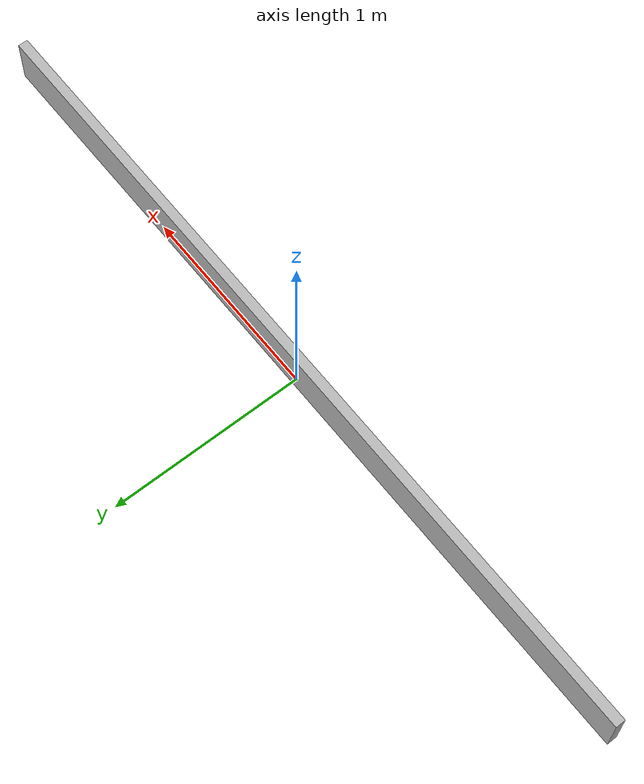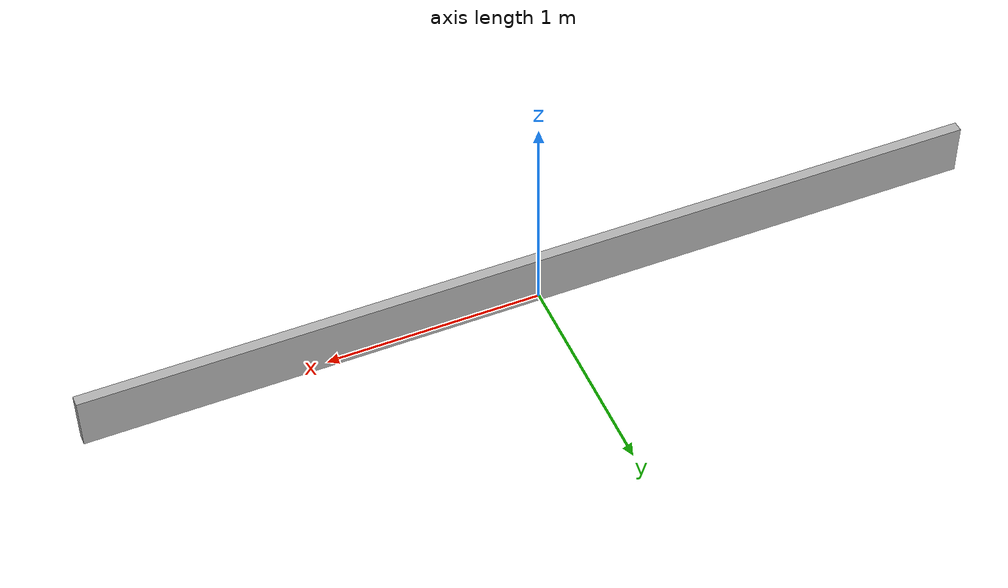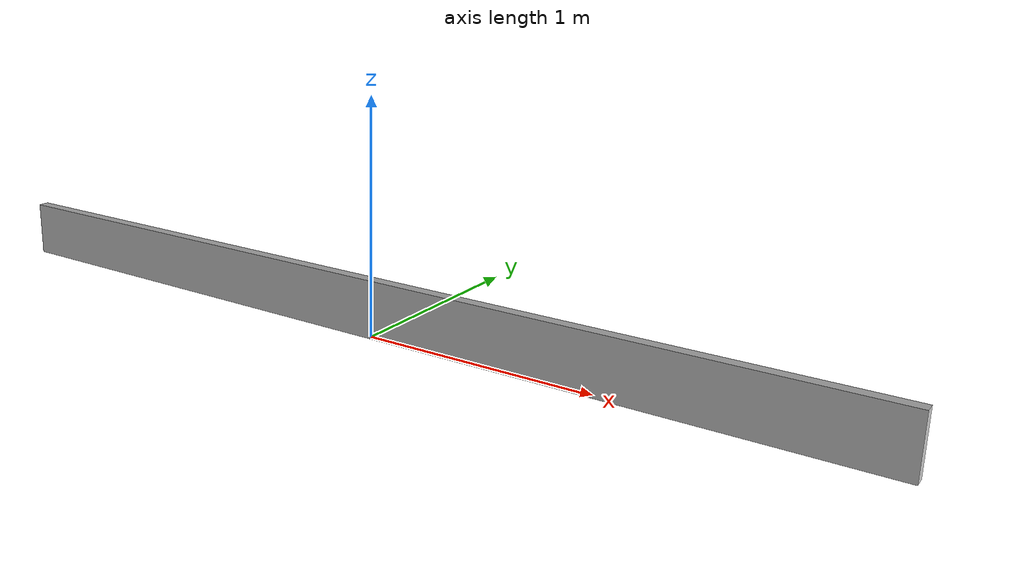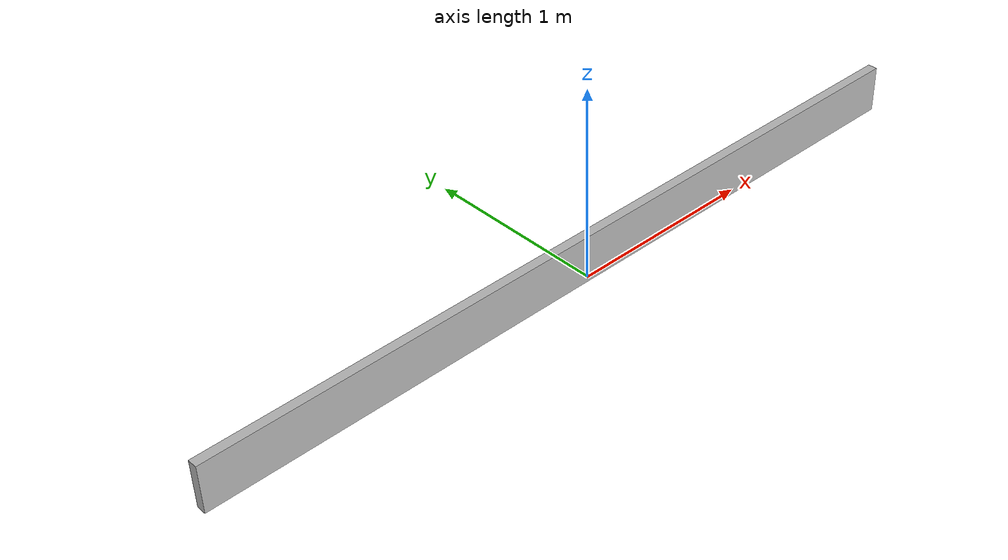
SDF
<?xml version="1.0" ?>
<sdf version="1.6">
  <model name="wall_e">
    <pose>0 0 0.125 0 0 0</pose>
    <link name="box">
      <pose>0 0 0 0 0 0</pose>
      <collision name="collision">
        <geometry>
          <box>
            <size>4.2 0.05 0.25</size>
          </box>
        </geometry>
      </collision>
      <visual name="visual">
        <geometry>
          <box>
            <size>4.2 0.05 0.25</size>
          </box>
        </geometry>
        <material>
          <script>
            <uri>model://turtlebot3_autorace_2020/wall_e/materials/scripts</uri>
            <uri>model://turtlebot3_autorace_2020/wall_e/materials/textures</uri>
            <name>wall_e</name>
          </script>
        </material>
      </visual>
    </link>
  </model>
</sdf>
